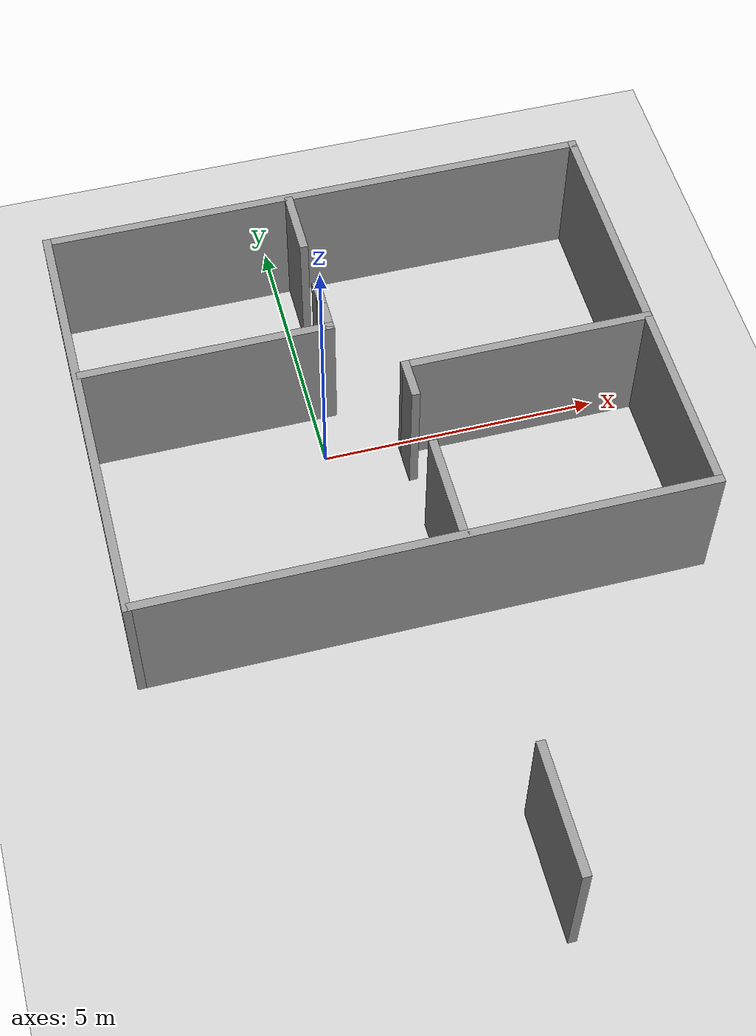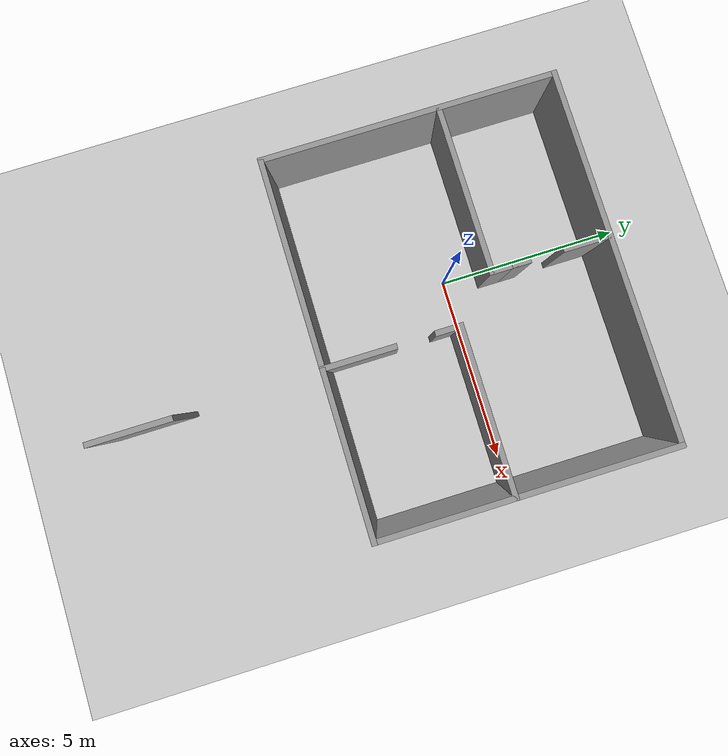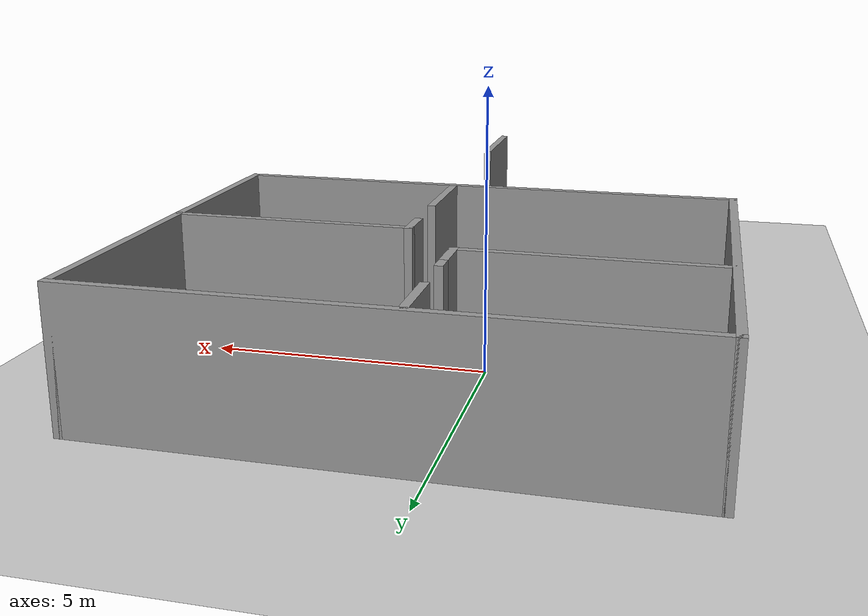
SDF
<sdf version="1.7">
 <world name="default">
  <light name="sun" type="directional">
   <pose>0 0 10 0 -0 0</pose>
   <diffuse>0.8 0.8 0.8 1</diffuse>
   <specular>0.2 0.2 0.2 1</specular>
   <attenuation>
    <range>1000</range>
    <constant>0.9</constant>
    <linear>0.01</linear>
    <quadratic>0.001</quadratic>
   </attenuation>
   <direction>-0.5 0.1 -0.9</direction>
   <spot><inner_angle>0</inner_angle><outer_angle>0</outer_angle><falloff>0</falloff></spot>
  </light>
  <model name="ground_plane">
   <static>1</static>
   <link name="link">
    <collision name="collision">
     <geometry><plane><normal>0 0 1</normal><size>100 100</size></plane></geometry>
     <surface>
      <contact><collide_bitmask>65535</collide_bitmask></contact>
      <friction><ode><mu>100</mu><mu2>50</mu2></ode></friction>
     </surface>
    </collision>
    <visual name="visual">
     <cast_shadows>0</cast_shadows>
     <geometry><plane><normal>0 0 1</normal><size>100 100</size></plane></geometry>
     <material>
      <script><uri>file://media/materials/scripts/gazebo.material</uri><name>Gazebo/Grey</name></script>
     </material>
    </visual>
   </link>
  </model>
  <gravity>0 0 -9.8</gravity>
  <magnetic_field>6e-06 2.3e-05 -4.2e-05</magnetic_field>
  <atmosphere type="adiabatic"/>
  <physics type="ode">
   <max_step_size>0.001</max_step_size>
   <real_time_factor>1</real_time_factor>
   <real_time_update_rate>1000</real_time_update_rate>
  </physics>
  <scene><ambient>0.4 0.4 0.4 1</ambient><background>0.7 0.7 0.7 1</background><shadows>1</shadows></scene>
  <audio><device>default</device></audio>
  <spherical_coordinates>
   <surface_model>EARTH_WGS84</surface_model>
   <latitude_deg>0</latitude_deg>
   <longitude_deg>0</longitude_deg>
   <elevation>0</elevation>
   <heading_deg>0</heading_deg>
  </spherical_coordinates>
  <model name="room1">
   <pose>0.839805 -2.82945 0 0 -0 0</pose>
   <link name="Wall_0">
    <collision name="Wall_0_Collision">
     <geometry><box><size>10 0.15 2.5</size></box></geometry>
     <pose>0 0 1.25 0 -0 0</pose>
    </collision>
    <visual name="Wall_0_Visual">
     <pose>0 0 1.25 0 -0 0</pose>
     <geometry><box><size>10 0.15 2.5</size></box></geometry>
     <material>
      <script><uri>file://media/materials/scripts/gazebo.material</uri><name>Gazebo/Grey</name></script>
      <ambient>1 1 1 1</ambient>
     </material>
     <meta><layer>0</layer></meta>
    </visual>
    <pose>0 6.9256 0 0 -0 0</pose>
   </link>
   <link name="Wall_1">
    <collision name="Wall_1_Collision">
     <geometry><box><size>8 0.15 2.5</size></box></geometry>
     <pose>0 0 1.25 0 -0 0</pose>
    </collision>
    <visual name="Wall_1_Visual">
     <pose>0 0 1.25 0 -0 0</pose>
     <geometry><box><size>8 0.15 2.5</size></box></geometry>
     <material>
      <script><uri>file://media/materials/scripts/gazebo.material</uri><name>Gazebo/Grey</name></script>
      <ambient>1 1 1 1</ambient>
     </material>
     <meta><layer>0</layer></meta>
    </visual>
    <pose>4.925 3.0006 0 0 -0 -1.5708</pose>
   </link>
   <link name="Wall_14">
    <collision name="Wall_14_Collision">
     <geometry><box><size>2.25 0.15 2.5</size></box></geometry>
     <pose>0 0 1.25 0 -0 0</pose>
    </collision>
    <visual name="Wall_14_Visual">
     <pose>0 0 1.25 0 -0 0</pose>
     <geometry><box><size>2.25 0.15 2.5</size></box></geometry>
     <material>
      <script><uri>file://media/materials/scripts/gazebo.material</uri><name>Gazebo/Grey</name></script>
      <ambient>1 1 1 1</ambient>
     </material>
     <meta><layer>0</layer></meta>
    </visual>
    <pose>0.654513 -5.8756 0 0 -0 -1.5708</pose>
   </link>
   <link name="Wall_2">
    <collision name="Wall_2_Collision">
     <geometry><box><size>10 0.15 2.5</size></box></geometry>
     <pose>0 0 1.25 0 -0 0</pose>
    </collision>
    <visual name="Wall_2_Visual">
     <pose>0 0 1.25 0 -0 0</pose>
     <geometry><box><size>10 0.15 2.5</size></box></geometry>
     <material>
      <script><uri>file://media/materials/scripts/gazebo.material</uri><name>Gazebo/Grey</name></script>
      <ambient>1 1 1 1</ambient>
     </material>
     <meta><layer>0</layer></meta>
    </visual>
    <pose>0 -0.924401 0 0 -0 3.14159</pose>
   </link>
   <link name="Wall_23">
    <collision name="Wall_23_Collision">
     <geometry><box><size>2 0.15 2.5</size></box></geometry>
     <pose>0 0 1.25 0 -0 0</pose>
    </collision>
    <visual name="Wall_23_Visual">
     <pose>0 0 1.25 0 -0 0</pose>
     <geometry><box><size>2 0.15 2.5</size></box></geometry>
     <material>
      <script><uri>file://media/materials/scripts/gazebo.material</uri><name>Gazebo/Grey</name></script>
      <ambient>1 1 1 1</ambient>
     </material>
     <meta><layer>0</layer></meta>
    </visual>
    <pose>0.58437 0.001508 0 0 -0 -1.5708</pose>
   </link>
   <link name="Wall_26">
    <collision name="Wall_26_Collision">
     <geometry><box><size>0.75 0.15 2.5</size></box></geometry>
     <pose>0 0 1.25 0 -0 0</pose>
    </collision>
    <visual name="Wall_26_Visual">
     <pose>0 0 1.25 0 -0 0</pose>
     <geometry><box><size>0.75 0.15 2.5</size></box></geometry>
     <material>
      <script><uri>file://media/materials/scripts/gazebo.material</uri><name>Gazebo/Grey</name></script>
      <ambient>1 1 1 1</ambient>
     </material>
     <meta><layer>0</layer></meta>
    </visual>
    <pose>0.56688 2.35802 0 0 -0 -1.5708</pose>
   </link>
   <link name="Wall_29">
    <collision name="Wall_29_Collision">
     <geometry><box><size>4.5 0.15 2.5</size></box></geometry>
     <pose>0 0 1.25 0 -0 0</pose>
    </collision>
    <visual name="Wall_29_Visual">
     <pose>0 0 1.25 0 -0 0</pose>
     <geometry><box><size>4.5 0.15 2.5</size></box></geometry>
     <material>
      <script><uri>file://media/materials/scripts/gazebo.material</uri><name>Gazebo/Grey</name></script>
      <ambient>1 1 1 1</ambient>
     </material>
     <meta><layer>0</layer></meta>
    </visual>
    <pose>2.74188 2.65802 0 0 -0 0</pose>
   </link>
   <link name="Wall_3">
    <collision name="Wall_3_Collision">
     <geometry><box><size>8 0.15 2.5</size></box></geometry>
     <pose>0 0 1.25 0 -0 0</pose>
    </collision>
    <visual name="Wall_3_Visual">
     <pose>0 0 1.25 0 -0 0</pose>
     <geometry><box><size>8 0.15 2.5</size></box></geometry>
     <material>
      <script><uri>file://media/materials/scripts/gazebo.material</uri><name>Gazebo/Grey</name></script>
      <ambient>1 1 1 1</ambient>
     </material>
     <meta><layer>0</layer></meta>
    </visual>
    <pose>-4.925 3.0006 0 0 -0 1.5708</pose>
   </link>
   <link name="Wall_31">
    <collision name="Wall_31_Collision">
     <geometry><box><size>0.75 0.15 2.5</size></box></geometry>
     <pose>0 0 1.25 0 -0 0</pose>
    </collision>
    <visual name="Wall_31_Visual">
     <pose>0 0 1.25 0 -0 0</pose>
     <geometry><box><size>0.75 0.15 2.5</size></box></geometry>
     <material>
      <script><uri>file://media/materials/scripts/gazebo.material</uri><name>Gazebo/Grey</name></script>
      <ambient>1 1 1 1</ambient>
     </material>
     <meta><layer>0</layer></meta>
    </visual>
    <pose>-0.489736 4.10703 0 0 -0 1.5708</pose>
   </link>
   <link name="Wall_32">
    <collision name="Wall_32_Collision">
     <geometry><box><size>0.5 0.15 2.5</size></box></geometry>
     <pose>0 0 1.25 0 -0 0</pose>
    </collision>
    <visual name="Wall_32_Visual">
     <pose>0 0 1.25 0 -0 0</pose>
     <geometry><box><size>0.5 0.15 2.5</size></box></geometry>
     <material>
      <script><uri>file://media/materials/scripts/gazebo.material</uri><name>Gazebo/Grey</name></script>
      <ambient>1 1 1 1</ambient>
     </material>
     <meta><layer>0</layer></meta>
    </visual>
    <pose>-0.489736 4.58203 0 0 -0 1.5708</pose>
   </link>
   <link name="Wall_6">
    <collision name="Wall_6_Collision">
     <geometry><box><size>1.25 0.15 2.5</size></box></geometry>
     <pose>0 0 1.25 0 -0 0</pose>
    </collision>
    <visual name="Wall_6_Visual">
     <pose>0 0 1.25 0 -0 0</pose>
     <geometry><box><size>1.25 0.15 2.5</size></box></geometry>
     <material>
      <script><uri>file://media/materials/scripts/gazebo.material</uri><name>Gazebo/Grey</name></script>
      <ambient>1 1 1 1</ambient>
     </material>
     <meta><layer>0</layer></meta>
    </visual>
    <pose>-0.500014 6.30564 0 0 -0 -1.5708</pose>
   </link>
   <link name="Wall_9">
    <collision name="Wall_9_Collision">
     <geometry><box><size>4.5 0.15 2.5</size></box></geometry>
     <pose>0 0 1.25 0 -0 0</pose>
    </collision>
    <visual name="Wall_9_Visual">
     <pose>0 0 1.25 0 -0 0</pose>
     <geometry><box><size>4.5 0.15 2.5</size></box></geometry>
     <material>
      <script><uri>file://media/materials/scripts/gazebo.material</uri><name>Gazebo/Grey</name></script>
      <ambient>1 1 1 1</ambient>
     </material>
     <meta><layer>0</layer></meta>
    </visual>
    <pose>-2.66474 3.80703 0 0 -0 3.14159</pose>
   </link>
   <static>1</static>
  </model>
 </world>
</sdf>
